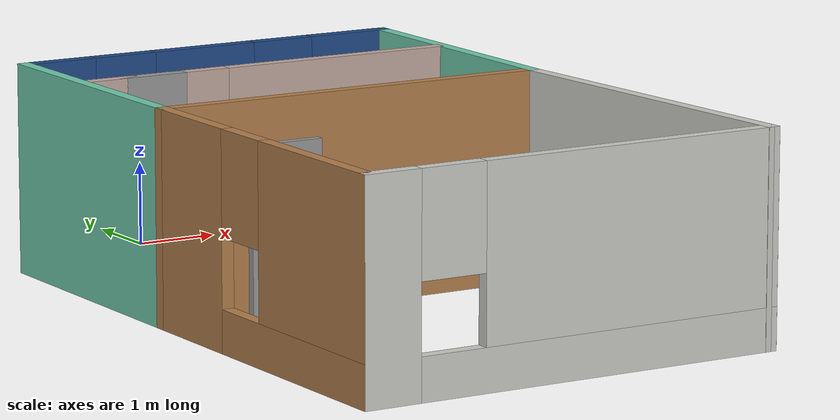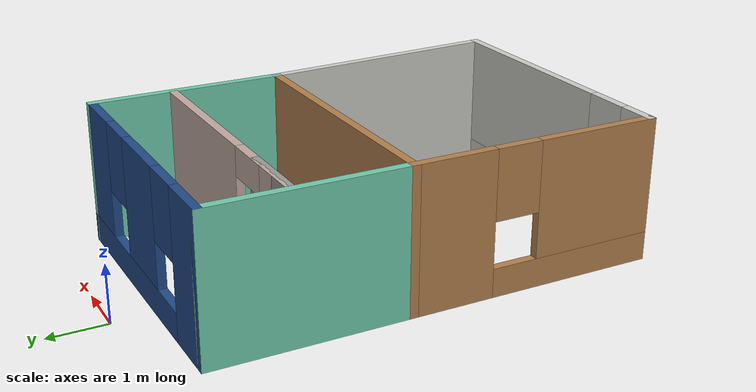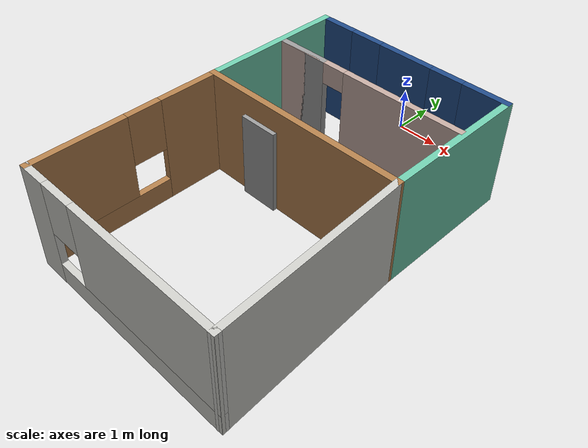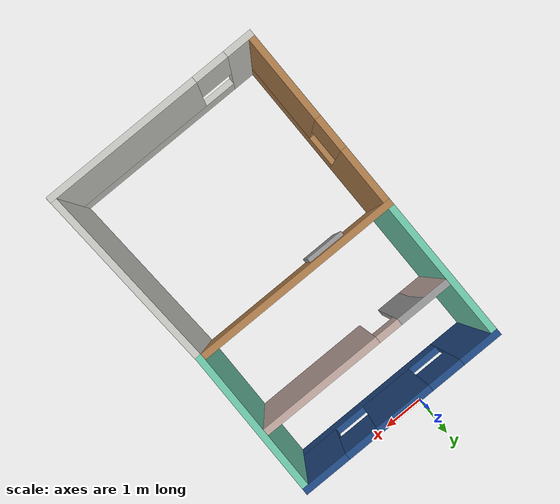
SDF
<?xml version='1.0'?>
<sdf version='1.7'>
  <model name='model'>
    <pose>0.64209 -4.27959 0 0 -0 0</pose>
    <link name='Door_1'>
      <collision name='Door_1_Collision'>
        <geometry>
          <box>
            <size>0.9 0.17 2</size>
          </box>
        </geometry>
        <pose>0 0 1 0 -0 0</pose>
      </collision>
      <visual name='Door_1_Visual'>
        <pose>0 0 1 0 -0 0</pose>
        <geometry>
          <box>
            <size>0.9 0.17 2</size>
          </box>
        </geometry>
        <material>
          <script>
            <uri>file://media/materials/scripts/gazebo.material</uri>
            <name>Gazebo/Grey</name>
          </script>
        </material>
      </visual>
      <pose>-1.07562 0.060898 0 0 -0 0</pose>
    </link>
    <link name='Wall_0'>
      <pose>-0.12709 3.49959 0 0 -0 0</pose>
      <visual name='Wall_0_Visual_0'>
        <pose>-2.02192 0 1.25 0 -0 0</pose>
        <geometry>
          <box>
            <size>0.956165 0.15 2.5</size>
          </box>
        </geometry>
        <material>
          <script>
            <uri>file://media/materials/scripts/gazebo.material</uri>
            <name>Gazebo/Grey</name>
          </script>
          <ambient>0.12549 0.290196 0.529412 1</ambient>
        </material>
        <meta>
          <layer>0</layer>
        </meta>
      </visual>
      <collision name='Wall_0_Collision_0'>
        <geometry>
          <box>
            <size>0.956165 0.15 2.5</size>
          </box>
        </geometry>
        <pose>-2.02192 0 1.25 0 -0 0</pose>
      </collision>
      <visual name='Wall_0_Visual_1'>
        <pose>0.478083 0 0.25 0 -0 0</pose>
        <geometry>
          <box>
            <size>4.04383 0.15 0.5</size>
          </box>
        </geometry>
        <material>
          <script>
            <uri>file://media/materials/scripts/gazebo.material</uri>
            <name>Gazebo/Grey</name>
          </script>
          <ambient>0.12549 0.290196 0.529412 1</ambient>
        </material>
        <meta>
          <layer>0</layer>
        </meta>
      </visual>
      <collision name='Wall_0_Collision_1'>
        <geometry>
          <box>
            <size>4.04383 0.15 0.5</size>
          </box>
        </geometry>
        <pose>0.478083 0 0.25 0 -0 0</pose>
      </collision>
      <visual name='Wall_0_Visual_2'>
        <pose>-0.073177 0 1.5 0 -0 0</pose>
        <geometry>
          <box>
            <size>1.34132 0.15 2</size>
          </box>
        </geometry>
        <material>
          <script>
            <uri>file://media/materials/scripts/gazebo.material</uri>
            <name>Gazebo/Grey</name>
          </script>
          <ambient>0.12549 0.290196 0.529412 1</ambient>
        </material>
        <meta>
          <layer>0</layer>
        </meta>
      </visual>
      <collision name='Wall_0_Collision_2'>
        <geometry>
          <box>
            <size>1.34132 0.15 2</size>
          </box>
        </geometry>
        <pose>-0.073177 0 1.5 0 -0 0</pose>
      </collision>
      <visual name='Wall_0_Visual_3'>
        <pose>1.94874 0 1.5 0 -0 0</pose>
        <geometry>
          <box>
            <size>1.10252 0.15 2</size>
          </box>
        </geometry>
        <material>
          <script>
            <uri>file://media/materials/scripts/gazebo.material</uri>
            <name>Gazebo/Grey</name>
          </script>
          <ambient>0.12549 0.290196 0.529412 1</ambient>
        </material>
        <meta>
          <layer>0</layer>
        </meta>
      </visual>
      <collision name='Wall_0_Collision_3'>
        <geometry>
          <box>
            <size>1.10252 0.15 2</size>
          </box>
        </geometry>
        <pose>1.94874 0 1.5 0 -0 0</pose>
      </collision>
      <visual name='Wall_0_Visual_4'>
        <pose>-1.14383 0 1.9 0 -0 0</pose>
        <geometry>
          <box>
            <size>0.8 0.15 1.2</size>
          </box>
        </geometry>
        <material>
          <script>
            <uri>file://media/materials/scripts/gazebo.material</uri>
            <name>Gazebo/Grey</name>
          </script>
          <ambient>0.12549 0.290196 0.529412 1</ambient>
        </material>
        <meta>
          <layer>0</layer>
        </meta>
      </visual>
      <collision name='Wall_0_Collision_4'>
        <geometry>
          <box>
            <size>0.8 0.15 1.2</size>
          </box>
        </geometry>
        <pose>-1.14383 0 1.9 0 -0 0</pose>
      </collision>
      <visual name='Wall_0_Visual_5'>
        <pose>0.997481 0 1.9 0 -0 0</pose>
        <geometry>
          <box>
            <size>0.8 0.15 1.2</size>
          </box>
        </geometry>
        <material>
          <script>
            <uri>file://media/materials/scripts/gazebo.material</uri>
            <name>Gazebo/Grey</name>
          </script>
          <ambient>0.12549 0.290196 0.529412 1</ambient>
        </material>
        <meta>
          <layer>0</layer>
        </meta>
      </visual>
      <collision name='Wall_0_Collision_5'>
        <geometry>
          <box>
            <size>0.8 0.15 1.2</size>
          </box>
        </geometry>
        <pose>0.997481 0 1.9 0 -0 0</pose>
      </collision>
    </link>
    <link name='Wall_1'>
      <collision name='Wall_1_Collision'>
        <geometry>
          <box>
            <size>3.5 0.15 2.5</size>
          </box>
        </geometry>
        <pose>0 0 1.25 0 -0 0</pose>
      </collision>
      <visual name='Wall_1_Visual'>
        <pose>0 0 1.25 0 -0 0</pose>
        <geometry>
          <box>
            <size>3.5 0.15 2.5</size>
          </box>
        </geometry>
        <material>
          <script>
            <uri>file://media/materials/scripts/gazebo.material</uri>
            <name>Gazebo/Grey</name>
          </script>
          <ambient>0.435294 0.796078 0.67451 1</ambient>
        </material>
        <meta>
          <layer>0</layer>
        </meta>
      </visual>
      <pose>2.29791 1.82459 0 0 -0 -1.5708</pose>
    </link>
    <link name='Wall_12'>
      <pose>-0.00209 -4.20041 0 0 -0 0</pose>
      <visual name='Wall_12_Visual_0'>
        <pose>-2.28061 0 1.25 0 -0 0</pose>
        <geometry>
          <box>
            <size>0.688775 0.15 2.5</size>
          </box>
        </geometry>
        <material>
          <script>
            <uri>file://media/materials/scripts/gazebo.material</uri>
            <name>Gazebo/CeilingTiled</name>
          </script>
          <ambient>0.996078 0.47451 0.0196078 1</ambient>
        </material>
        <meta>
          <layer>0</layer>
        </meta>
      </visual>
      <collision name='Wall_12_Collision_0'>
        <geometry>
          <box>
            <size>0.688775 0.15 2.5</size>
          </box>
        </geometry>
        <pose>-2.28061 0 1.25 0 -0 0</pose>
      </collision>
      <visual name='Wall_12_Visual_1'>
        <pose>0.344388 0 0.25 0 -0 0</pose>
        <geometry>
          <box>
            <size>4.56123 0.15 0.5</size>
          </box>
        </geometry>
        <material>
          <script>
            <uri>file://media/materials/scripts/gazebo.material</uri>
            <name>Gazebo/CeilingTiled</name>
          </script>
          <ambient>0.996078 0.47451 0.0196078 1</ambient>
        </material>
        <meta>
          <layer>0</layer>
        </meta>
      </visual>
      <collision name='Wall_12_Collision_1'>
        <geometry>
          <box>
            <size>4.56123 0.15 0.5</size>
          </box>
        </geometry>
        <pose>0.344388 0 0.25 0 -0 0</pose>
      </collision>
      <visual name='Wall_12_Visual_2'>
        <pose>0.744388 0 1.5 0 -0 0</pose>
        <geometry>
          <box>
            <size>3.76123 0.15 2</size>
          </box>
        </geometry>
        <material>
          <script>
            <uri>file://media/materials/scripts/gazebo.material</uri>
            <name>Gazebo/CeilingTiled</name>
          </script>
          <ambient>0.996078 0.47451 0.0196078 1</ambient>
        </material>
        <meta>
          <layer>0</layer>
        </meta>
      </visual>
      <collision name='Wall_12_Collision_2'>
        <geometry>
          <box>
            <size>3.76123 0.15 2</size>
          </box>
        </geometry>
        <pose>0.744388 0 1.5 0 -0 0</pose>
      </collision>
      <visual name='Wall_12_Visual_3'>
        <pose>-1.53622 0 1.9 0 -0 0</pose>
        <geometry>
          <box>
            <size>0.8 0.15 1.2</size>
          </box>
        </geometry>
        <material>
          <script>
            <uri>file://media/materials/scripts/gazebo.material</uri>
            <name>Gazebo/CeilingTiled</name>
          </script>
          <ambient>0.996078 0.47451 0.0196078 1</ambient>
        </material>
        <meta>
          <layer>0</layer>
        </meta>
      </visual>
      <collision name='Wall_12_Collision_3'>
        <geometry>
          <box>
            <size>0.8 0.15 1.2</size>
          </box>
        </geometry>
        <pose>-1.53622 0 1.9 0 -0 0</pose>
      </collision>
    </link>
    <link name='Wall_13'>
      <collision name='Wall_13_Collision'>
        <geometry>
          <box>
            <size>4.50718 0.15 2.5</size>
          </box>
        </geometry>
        <pose>0 0 1.25 0 -0 0</pose>
      </collision>
      <visual name='Wall_13_Visual'>
        <pose>0 0 1.25 0 -0 0</pose>
        <geometry>
          <box>
            <size>4.50718 0.15 2.5</size>
          </box>
        </geometry>
        <material>
          <script>
            <uri>file://media/materials/scripts/gazebo.material</uri>
            <name>Gazebo/CeilingTiled</name>
          </script>
          <ambient>0.996078 0.47451 0.0196078 1</ambient>
        </material>
        <meta>
          <layer>0</layer>
        </meta>
      </visual>
      <pose>2.42291 -2.02541 0 0 -0 1.6282</pose>
    </link>
    <link name='Wall_2'>
      <collision name='Wall_2_Collision'>
        <geometry>
          <box>
            <size>5 0.15 2.5</size>
          </box>
        </geometry>
        <pose>0 0 1.25 0 -0 0</pose>
      </collision>
      <visual name='Wall_2_Visual'>
        <pose>0 0 1.25 0 -0 0</pose>
        <geometry>
          <box>
            <size>5 0.15 2.5</size>
          </box>
        </geometry>
        <material>
          <script>
            <uri>file://media/materials/scripts/gazebo.material</uri>
            <name>Gazebo/Wood</name>
          </script>
          <ambient>0.435294 0.796078 0.67451 1</ambient>
        </material>
        <meta>
          <layer>0</layer>
        </meta>
      </visual>
      <pose>-0.12709 0.14959 0 0 -0 3.14159</pose>
    </link>
    <link name='Wall_3'>
      <collision name='Wall_3_Collision'>
        <geometry>
          <box>
            <size>3.5 0.15 2.5</size>
          </box>
        </geometry>
        <pose>0 0 1.25 0 -0 0</pose>
      </collision>
      <visual name='Wall_3_Visual'>
        <pose>0 0 1.25 0 -0 0</pose>
        <geometry>
          <box>
            <size>3.5 0.15 2.5</size>
          </box>
        </geometry>
        <material>
          <script>
            <uri>file://media/materials/scripts/gazebo.material</uri>
            <name>Gazebo/Grey</name>
          </script>
          <ambient>0.435294 0.796078 0.67451 1</ambient>
        </material>
        <meta>
          <layer>0</layer>
        </meta>
      </visual>
      <pose>-2.55209 1.82459 0 0 -0 1.5708</pose>
    </link>
    <link name='Wall_5'>
      <collision name='Wall_5_Collision'>
        <geometry>
          <box>
            <size>1.25 0.15 2.5</size>
          </box>
        </geometry>
        <pose>0 0 1.25 0 -0 0</pose>
      </collision>
      <visual name='Wall_5_Visual'>
        <pose>0 0 1.25 0 -0 0</pose>
        <geometry>
          <box>
            <size>1.25 0.15 2.5</size>
          </box>
        </geometry>
        <material>
          <script>
            <uri>file://media/materials/scripts/gazebo.material</uri>
            <name>Gazebo/Grey</name>
          </script>
          <ambient>1 1 1 1</ambient>
        </material>
        <meta>
          <layer>0</layer>
        </meta>
      </visual>
      <pose>-1.85152 2.09583 0 0 -0 3.14159</pose>
    </link>
    <link name='Wall_6'>
      <pose>-0.101515 2.09583 0 0 -0 0</pose>
      <visual name='Wall_6_Visual_0'>
        <pose>-1.92073 0 1.25 0 -0 0</pose>
        <geometry>
          <box>
            <size>0.908541 0.15 2.5</size>
          </box>
        </geometry>
        <material>
          <script>
            <uri>file://media/materials/scripts/gazebo.material</uri>
            <name>Gazebo/Grey</name>
          </script>
          <ambient>0.760784 0.662745 0.627451 1</ambient>
        </material>
        <meta>
          <layer>0</layer>
        </meta>
      </visual>
      <collision name='Wall_6_Collision_0'>
        <geometry>
          <box>
            <size>0.908541 0.15 2.5</size>
          </box>
        </geometry>
        <pose>-1.92073 0 1.25 0 -0 0</pose>
      </collision>
      <visual name='Wall_6_Visual_1'>
        <pose>0.904271 0 1.25 0 -0 0</pose>
        <geometry>
          <box>
            <size>2.94146 0.15 2.5</size>
          </box>
        </geometry>
        <material>
          <script>
            <uri>file://media/materials/scripts/gazebo.material</uri>
            <name>Gazebo/Grey</name>
          </script>
          <ambient>0.760784 0.662745 0.627451 1</ambient>
        </material>
        <meta>
          <layer>0</layer>
        </meta>
      </visual>
      <collision name='Wall_6_Collision_1'>
        <geometry>
          <box>
            <size>2.94146 0.15 2.5</size>
          </box>
        </geometry>
        <pose>0.904271 0 1.25 0 -0 0</pose>
      </collision>
      <visual name='Wall_6_Visual_2'>
        <pose>-1.01646 0 2.25 0 -0 0</pose>
        <geometry>
          <box>
            <size>0.9 0.15 0.5</size>
          </box>
        </geometry>
        <material>
          <script>
            <uri>file://media/materials/scripts/gazebo.material</uri>
            <name>Gazebo/Grey</name>
          </script>
          <ambient>0.760784 0.662745 0.627451 1</ambient>
        </material>
        <meta>
          <layer>0</layer>
        </meta>
      </visual>
      <collision name='Wall_6_Collision_2'>
        <geometry>
          <box>
            <size>0.9 0.15 0.5</size>
          </box>
        </geometry>
        <pose>-1.01646 0 2.25 0 -0 0</pose>
      </collision>
    </link>
    <link name='Wall_8'>
      <pose>-2.55209 -2.02541 0 0 -0 -1.5708</pose>
      <visual name='Wall_8_Visual_0'>
        <pose>-1.50477 0 1.25 0 -0 0</pose>
        <geometry>
          <box>
            <size>1.49045 0.15 2.5</size>
          </box>
        </geometry>
        <material>
          <script>
            <uri>file://media/materials/scripts/gazebo.material</uri>
            <name>Gazebo/Wood</name>
          </script>
          <ambient>0.996078 0.47451 0.0196078 1</ambient>
        </material>
        <meta>
          <layer>0</layer>
        </meta>
      </visual>
      <collision name='Wall_8_Collision_0'>
        <geometry>
          <box>
            <size>1.49045 0.15 2.5</size>
          </box>
        </geometry>
        <pose>-1.50477 0 1.25 0 -0 0</pose>
      </collision>
      <visual name='Wall_8_Visual_1'>
        <pose>0.745225 0 0.25 0 -0 0</pose>
        <geometry>
          <box>
            <size>3.00955 0.15 0.5</size>
          </box>
        </geometry>
        <material>
          <script>
            <uri>file://media/materials/scripts/gazebo.material</uri>
            <name>Gazebo/Wood</name>
          </script>
          <ambient>0.996078 0.47451 0.0196078 1</ambient>
        </material>
        <meta>
          <layer>0</layer>
        </meta>
      </visual>
      <collision name='Wall_8_Collision_1'>
        <geometry>
          <box>
            <size>3.00955 0.15 0.5</size>
          </box>
        </geometry>
        <pose>0.745225 0 0.25 0 -0 0</pose>
      </collision>
      <visual name='Wall_8_Visual_2'>
        <pose>1.14522 0 1.5 0 -0 0</pose>
        <geometry>
          <box>
            <size>2.20955 0.15 2</size>
          </box>
        </geometry>
        <material>
          <script>
            <uri>file://media/materials/scripts/gazebo.material</uri>
            <name>Gazebo/Wood</name>
          </script>
          <ambient>0.996078 0.47451 0.0196078 1</ambient>
        </material>
        <meta>
          <layer>0</layer>
        </meta>
      </visual>
      <collision name='Wall_8_Collision_2'>
        <geometry>
          <box>
            <size>2.20955 0.15 2</size>
          </box>
        </geometry>
        <pose>1.14522 0 1.5 0 -0 0</pose>
      </collision>
      <visual name='Wall_8_Visual_3'>
        <pose>-0.35955 0 1.9 0 -0 0</pose>
        <geometry>
          <box>
            <size>0.8 0.15 1.2</size>
          </box>
        </geometry>
        <material>
          <script>
            <uri>file://media/materials/scripts/gazebo.material</uri>
            <name>Gazebo/Wood</name>
          </script>
          <ambient>0.996078 0.47451 0.0196078 1</ambient>
        </material>
        <meta>
          <layer>0</layer>
        </meta>
      </visual>
      <collision name='Wall_8_Collision_3'>
        <geometry>
          <box>
            <size>0.8 0.15 1.2</size>
          </box>
        </geometry>
        <pose>-0.35955 0 1.9 0 -0 0</pose>
      </collision>
    </link>
    <static>1</static>
  </model>
</sdf>
